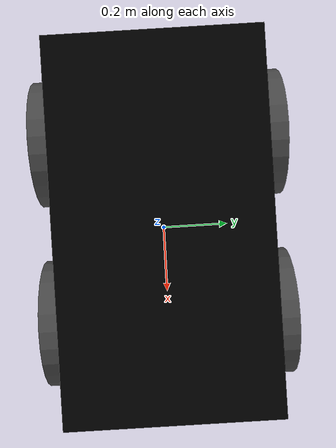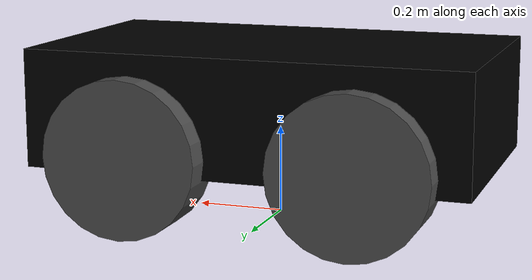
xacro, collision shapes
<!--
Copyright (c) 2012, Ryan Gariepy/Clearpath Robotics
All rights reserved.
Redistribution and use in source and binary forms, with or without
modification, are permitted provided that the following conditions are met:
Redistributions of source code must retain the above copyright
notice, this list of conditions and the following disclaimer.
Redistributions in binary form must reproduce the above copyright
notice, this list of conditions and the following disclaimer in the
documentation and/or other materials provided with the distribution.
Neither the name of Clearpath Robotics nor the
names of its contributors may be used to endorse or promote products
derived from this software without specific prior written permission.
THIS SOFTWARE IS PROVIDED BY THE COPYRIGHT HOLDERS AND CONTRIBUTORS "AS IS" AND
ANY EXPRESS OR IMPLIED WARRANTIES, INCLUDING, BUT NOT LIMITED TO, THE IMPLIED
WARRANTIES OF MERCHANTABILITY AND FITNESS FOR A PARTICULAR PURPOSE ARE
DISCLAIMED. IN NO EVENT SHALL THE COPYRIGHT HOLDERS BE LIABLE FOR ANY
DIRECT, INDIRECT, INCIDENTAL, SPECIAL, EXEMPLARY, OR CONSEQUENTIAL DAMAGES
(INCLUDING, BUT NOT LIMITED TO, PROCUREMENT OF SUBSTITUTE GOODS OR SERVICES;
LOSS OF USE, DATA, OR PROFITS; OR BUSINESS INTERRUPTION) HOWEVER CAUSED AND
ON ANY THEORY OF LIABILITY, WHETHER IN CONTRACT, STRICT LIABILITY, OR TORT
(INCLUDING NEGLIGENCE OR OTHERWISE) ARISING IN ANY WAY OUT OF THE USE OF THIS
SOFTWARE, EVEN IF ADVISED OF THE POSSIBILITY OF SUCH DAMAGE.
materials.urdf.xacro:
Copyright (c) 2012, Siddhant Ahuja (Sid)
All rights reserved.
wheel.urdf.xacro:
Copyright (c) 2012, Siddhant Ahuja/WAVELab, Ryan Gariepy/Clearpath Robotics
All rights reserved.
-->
<?xml version="1.0"?>

<robot
	xmlns:xi="http://www.w3.org/2001/XInclude"
	xmlns:gazebo="http://playerstage.sourceforge.net/gazebo/xmlschema/#gz"
    xmlns:model="http://playerstage.sourceforge.net/gazebo/xmlschema/#model"
	xmlns:sensor="http://playerstage.sourceforge.net/gazebo/xmlschema/#sensor"
	xmlns:body="http://playerstage.sourceforge.net/gazebo/xmlschema/#body"
    xmlns:geom="http://playerstage.sourceforge.net/gazebo/xmlschema/#geom"
    xmlns:joint="http://playerstage.sourceforge.net/gazebo/xmlschema/#joint"
	xmlns:controller="http://playerstage.sourceforge.net/gazebo/xmlschema/#controller"
	xmlns:interface="http://playerstage.sourceforge.net/gazebo/xmlschema/#interface"
	xmlns:rendering="http://playerstage.sourceforge.net/gazebo/xmlschema/#rendering"
    xmlns:renderable="http://playerstage.sourceforge.net/gazebo/xmlschema/#renderable"
    xmlns:physics="http://playerstage.sourceforge.net/gazebo/xmlschema/#physics"
	xmlns:xacro="http://ros.org/wiki/xacro" name="husky">

	<!-- Included URDF/XACRO Files -->
    <include filename="$(find husky_description)/urdf/materials.urdf.xacro" />
    <include filename="$(find husky_description)/urdf/wheel.urdf.xacro" />
    <include filename="$(find husky_description)/urdf/parts.urdf.xacro" />

	<!-- PROPERTY LIST -->
    <!--All units in m-kg-s-radians unit system -->
    <property name="M_PI" value="3.1415926535897931" />

    <!-- Main Body-base-->
    <!-- Location of com : center of mass -->
    <property name="base_x_com" value="-0.08748000" />
    <property name="base_y_com" value="-0.00085000" />
    <property name="base_z_com" value="0.09947000" />

    <!-- Size of the base-->
    <property name="base_x_size" value="0.98740000" />
    <property name="base_y_size" value="0.57090000" />
    <property name="base_z_size" value="0.24750000" />

    <!--Weight of the base-->
    <property name="base_mass" value="33.45489000" /> <!-- in kg-->

    <!--Inertial values for the base at center of mass, aligned with coordinate system. Units are kg*m^2-->
    <property name="base_ixx_com_cs" value="0.60216370" />
    <property name="base_ixy_com_cs" value="-0.02364198" />
    <property name="base_ixz_com_cs" value="-0.11972132" />
    <property name="base_iyy_com_cs" value="1.73859574" />
    <property name="base_iyz_com_cs" value="-0.00154437" />
    <property name="base_izz_com_cs" value="2.02955229" />

<!-- BASE-FOOTPRINT -->
    <!-- base_footprint is a fictitious link(frame) that is on the ground right below base_link origin, navigation stack depends on this frame -->
    <link name="base_footprint">
        <inertial>
            <mass value="0.0001" />
            <origin xyz="0 0 0" />
            <inertia ixx="0.0001" ixy="0.0" ixz="0.0"
                iyy="0.0001" iyz="0.0"
                izz="0.0001" />
        </inertial>

        <visual>
            <origin xyz="0 0 0" rpy="0 0 0" />
            <geometry>
                <box size="0.001 0.001 0.001" />
            </geometry>
        </visual>
    </link>

    <gazebo reference="base_footprint">
        <material>Gazebo/Green</material>
        <turnGravityOff>false</turnGravityOff>
    </gazebo>

    <joint name="base_footprint_joint" type="fixed">
		<origin xyz="0 0 ${wheel_x_size/2 - base_z_origin_to_wheel_origin - base_z_origin_offset - base_z_origin_offset}" rpy="0 0 0" />
        <parent link="base_footprint"/>
        <child link="base_link" />
    </joint>

    <!-- BASE-LINK -->
    <!--Actual body/chassis of the robot-->
    <link name="base_link">
        <inertial>
            <mass value="${base_mass}" />
            <origin xyz="${base_x_com} ${base_y_com} ${base_z_com}" />
            <inertia ixx="${base_ixx_com_cs}" ixy="${base_ixy_com_cs}" ixz="${base_ixz_com_cs}"
                iyy="${base_iyy_com_cs}" iyz="${base_iyz_com_cs}" izz="${base_izz_com_cs}" />
        </inertial>

        <visual>
            <origin xyz="0 0 ${base_z_origin_offset}" rpy="0 0 0" />
            <geometry>
                <mesh filename="package://husky_description/models/husky/meshes/base_link.stl" />
            </geometry>
            <material name="Black" />
        </visual>

		<collision>
			<origin xyz="0 0 ${wheel_x_size/2 - base_z_origin_to_wheel_origin - 0.02}" rpy="0 0 0 " />
			<geometry>
				<box size = "${base_x_size+0.02} ${base_y_size} ${base_z_size + 0.02}"/> <!--making it slightly bigger in x and z direction-->
			</geometry>
		</collision>
    </link>
    <gazebo reference="base_link">
        <material>Gazebo/FlatBlack</material>
        <turnGravityOff>false</turnGravityOff>
    </gazebo>

    <!-- WHEEL macros -->
	<husky_wheel fb="back" lr="left" parent="base_link" translateX="-1" translateY="1" flipY="-1"/>
	<husky_wheel fb="back" lr="right" parent="base_link" translateX="-1" translateY="-1" flipY="-1"/>
	<husky_wheel fb="front" lr="left" parent="base_link" translateX="1" translateY="1" flipY="-1"/>
	<husky_wheel fb="front" lr="right" parent="base_link" translateX="1" translateY="-1" flipY="-1"/>

    <!-- DECORATIONS -->
    <!-- Top Plate -->
    <husky_part parent="base_link" name="top_plate" mesh="top_plate"
          colour="Yellow"
          translateX="0.0" translateY="0.0" translateZ="0.005"
          rotateX="0.0" rotateY="0.0" rotateZ="0.0"/>
    <gazebo reference="base_link_top_plate_part">
        <material>Gazebo/Yellow</material>
    </gazebo>
    <!-- User Rail -->
    <husky_part parent="base_link" name="user_rail" mesh="user_rail"
          colour="DarkGray"
          translateX="0.272" translateY="0.0" translateZ="0.245"
          rotateX="0.0" rotateY="0.0" rotateZ="0.0"/>
    <gazebo reference="base_link_user_rail_part">
        <material>Gazebo/Grey</material>
    </gazebo>
    <!-- Bumpers -->
    <husky_part parent="base_link" name="front_bumper" mesh="bumper"
          colour="DarkGray"
          translateX="0.490" translateY="0.0" translateZ="0.091"
          rotateX="0.0" rotateY="0.0" rotateZ="0.0"/>
    <gazebo reference="base_link_front_bumper_part">
        <material>Gazebo/FlatBlack</material>
    </gazebo>
    <husky_part parent="base_link" name="rear_bumper" mesh="bumper"
          colour="DarkGray"
          translateX="-0.48" translateY="0.0" translateZ="0.091"
          rotateX="0.0" rotateY="0.0" rotateZ="3.14"/>
    <gazebo reference="base_link_rear_bumper_part">
        <material>Gazebo/FlatBlack</material>
    </gazebo>

    <gazebo>
		<controller:husky_plugin name="husky_diff_controller" plugin="libhusky_gazebo_plugins.so">
		        <alwaysOn>true</alwaysOn>
		        <updateRate>100.0</updateRate>
		        <backLeftJoint>joint_back_left_wheel</backLeftJoint>
		        <backRightJoint>joint_back_right_wheel</backRightJoint>
		        <frontLeftJoint>joint_front_left_wheel</frontLeftJoint>
		        <frontRightJoint>joint_front_right_wheel</frontRightJoint>
		        <wheelSeparation>${base_y_size}</wheelSeparation>
		        <wheelDiameter>${wheel_x_size}</wheelDiameter>
		        <torque>35</torque>
        </controller:husky_plugin>
	</gazebo>

</robot>

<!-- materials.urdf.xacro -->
<robot>
	<material name="Black">
		<color rgba="0.0 0.0 0.0 1.0"/>
	</material>

	<material name="Blue">
		<color rgba="0.0 0.0 0.8 1.0"/>
	</material>

	<material name="Green">
		<color rgba="0.0 0.8 0.0 1.0"/>
	</material>

	<material name="Gray">
		<color rgba="0.7 0.7 0.7 1.0"/>
	</material>

	<material name="DarkGray">
		<color rgba="0.3 0.3 0.3 1.0"/>
	</material>

	<material name="Red">
		<color rgba="0.8 0.0 0.0 1.0"/>
	</material>

	<material name="White">
		<color rgba="1.0 1.0 1.0 1.0"/>
	</material>

	<material name="Yellow">
		<color rgba="0.8 0.8 0.0 1.0"/>
	</material>
</robot>

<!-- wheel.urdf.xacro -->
<robot xmlns:sensor="http://playerstage.sourceforge.net/gazebo/xmlschema/#sensor"
	xmlns:controller="http://playerstage.sourceforge.net/gazebo/xmlschema/#controller"
	xmlns:interface="http://playerstage.sourceforge.net/gazebo/xmlschema/#interface"
	xmlns:xacro="http://ros.org/wiki/xacro" name="husky_wheel">

	<property name="M_PI" value="3.14159"/>

	<!-- Wheel -->

	<property name="wheel_x_com" value="0.00000000" /> <!-- com : center of mass -->
	<property name="wheel_y_com" value="0.00000000" /> <!-- com : center of mass -->
	<property name="wheel_z_com" value="0.00019000" /> <!-- com : center of mass -->

	<property name="wheel_x_size" value="0.35550000" />
	<property name="wheel_y_size" value="0.35550000" />
	<property name="wheel_z_size" value="0.11430000" />

	<property name="wheel_mass" value="2.63657000" /> <!-- in kg-->

	<property name="wheel_ixx_com_cs" value="0.02466885" /> <!-- at center of mass aligned with coordinate system, kg*m^2-->
	<property name="wheel_ixy_com_cs" value="0.00000000" /> <!-- at center of mass aligned with coordinate system, kg*m^2-->
	<property name="wheel_ixz_com_cs" value="0.00000000" /> <!-- at center of mass aligned with coordinate system, kg*m^2-->
	<property name="wheel_iyy_com_cs" value="0.02466885" /> <!-- at center of mass aligned with coordinate system, kg*m^2-->
	<property name="wheel_iyz_com_cs" value="0.00000000" /> <!-- at center of mass aligned with coordinate system, kg*m^2-->
	<property name="wheel_izz_com_cs" value="0.04410576" /> <!-- at center of mass aligned with coordinate system, kg*m^2-->

	<property name="base_x_origin_to_wheel_origin" value="0.25600006" />
	<property name="base_y_origin_to_wheel_origin" value="0.285475" />
	<property name="base_z_origin_to_wheel_origin" value="0.03282508" />

	<property name="base_z_origin_offset" value="0.00317500" /> <!-- origin is offset in + z direction by 3.175mm, so need to bring it back down for visual and collision-->

	<xacro:macro name="husky_wheel" params="fb lr parent translateX translateY flipY"> <!--fb : front, back ; lr: left, right -->
		<link name="${fb}_${lr}_wheel">
			<inertial>
				<mass value="${wheel_mass}" />
				<origin xyz="${wheel_x_com} ${wheel_y_com} ${wheel_z_com}" />
				<inertia  ixx="${wheel_ixx_com_cs}" ixy="${wheel_ixy_com_cs}" ixz="${wheel_ixz_com_cs}"
					iyy="${wheel_iyy_com_cs}" iyz="${wheel_iyz_com_cs}" izz="${wheel_izz_com_cs}" />
			</inertial>
			<visual>
				<origin xyz="0 0 0" rpy="${flipY*M_PI} 0 0" />
				<geometry>
					<mesh filename="package://husky_description/models/husky/meshes/wheel.stl" />
				</geometry>
				<material name="DarkGray" />
			</visual>
			<collision>
				<origin xyz="0 0 0" rpy="${flipY*M_PI/2} 0 0" />
				<geometry>
				    <cylinder length="${wheel_z_size}" radius="${wheel_x_size/2}" />
				</geometry>
			</collision>
		</link>

		<gazebo reference="${fb}_${lr}_wheel">
			<mu1 value="1.0"/>
			<mu2 value="1.0"/>
			<kp  value="100000.0" />
			<kd  value="1.0" />
			<fdir1 value="1 0 0"/>
			<material>Gazebo/Grey</material>
			<turnGravityOff>false</turnGravityOff>
		</gazebo>

		<joint name="joint_${fb}_${lr}_wheel" type="continuous">
			<parent link="${parent}"/>
			<child link="${fb}_${lr}_wheel"/>
			<origin xyz="${translateX * base_x_origin_to_wheel_origin} ${translateY * base_y_origin_to_wheel_origin} ${base_z_origin_to_wheel_origin}" rpy="0 0 0" />
			<axis xyz="0 1 0" rpy="0 0 0" />
			<limit effort="100" velocity="100"/>
			<joint_properties damping="0.0" friction="0.0"/>
		</joint>

		<!-- Transmission is important to link the joints and the controller -->
		<transmission name="joint_${fb}_${lr}_wheel_trans" type="SimpleTransmission">
			<actuator name="joint_${fb}_${lr}_wheel_motor" />
			<joint name="joint_${fb}_${lr}_wheel" />
			<mechanicalReduction>1</mechanicalReduction>
			<motorTorqueConstant>1</motorTorqueConstant>
		</transmission>

  	</xacro:macro>
</robot>

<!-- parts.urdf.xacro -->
<robot xmlns:sensor="http://playerstage.sourceforge.net/gazebo/xmlschema/#sensor"
	xmlns:controller="http://playerstage.sourceforge.net/gazebo/xmlschema/#controller"
	xmlns:interface="http://playerstage.sourceforge.net/gazebo/xmlschema/#interface"
	xmlns:xacro="http://ros.org/wiki/xacro" name="husky_part">

	<property name="x_com" value="0.00000000" /> <!-- com : center of mass -->
	<property name="y_com" value="0.00000000" /> <!-- com : center of mass -->
	<property name="z_com" value="0.00000000" /> <!-- com : center of mass -->

	<property name="x_size" value="1.0" />
	<property name="y_size" value="1.0" />
	<property name="z_size" value="1.0" />

	<property name="mass" value="0.1" /> <!-- in kg-->

	<property name="ixx_com_cs" value="0.01" /> <!-- at center of mass aligned with coordinate system, kg*m^2-->
	<property name="ixy_com_cs" value="0.0" /> <!-- at center of mass aligned with coordinate system, kg*m^2-->
	<property name="ixz_com_cs" value="0.0" /> <!-- at center of mass aligned with coordinate system, kg*m^2-->
	<property name="iyy_com_cs" value="0.01" /> <!-- at center of mass aligned with coordinate system, kg*m^2-->
	<property name="iyz_com_cs" value="0.00" /> <!-- at center of mass aligned with coordinate system, kg*m^2-->
	<property name="izz_com_cs" value="0.01" /> <!-- at center of mass aligned with coordinate system, kg*m^2-->

	<xacro:macro name="husky_part" params="parent name mesh colour translateX translateY translateZ rotateX rotateY rotateZ">
		<joint name="${parent}_${name}_joint" type="fixed">
		    <origin xyz="${translateX} ${translateY} ${translateZ}"
		            rpy="${rotateX} ${rotateY} ${rotateZ}" />
		    <parent link="${parent}" />
		    <child link="${parent}_${name}_part" />
		</joint>

		<link name="${parent}_${name}_part">
			<inertial>
				<mass value="${mass}" />
				<origin xyz="${x_com} ${y_com} ${z_com}" />
				<inertia ixx="${ixx_com_cs}" ixy="${ixy_com_cs}" ixz="${ixz_com_cs}"
					iyy="${iyy_com_cs}" iyz="${iyz_com_cs}" izz="${izz_com_cs}" />
			</inertial>
			<visual>
				<origin xyz="0 0 0" rpy="0 0 0" />
				<geometry>
					<mesh filename="package://husky_description/models/husky/meshes/${mesh}.stl" />
				</geometry>
				<material name="${colour}" />
			</visual>
			<collision>
				<origin xyz="0 0 0" rpy="0 0 0"/>
				<geometry>
					<box size="0.001 0.001 0.001" /> <!--the collision boundary for parts are taken into account by collision boundary of the base_link-->
				</geometry>
			</collision>
		</link>

  	</xacro:macro>
</robot>
